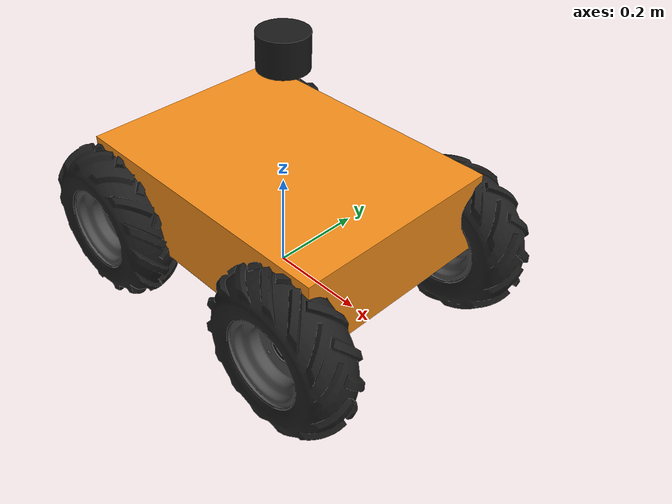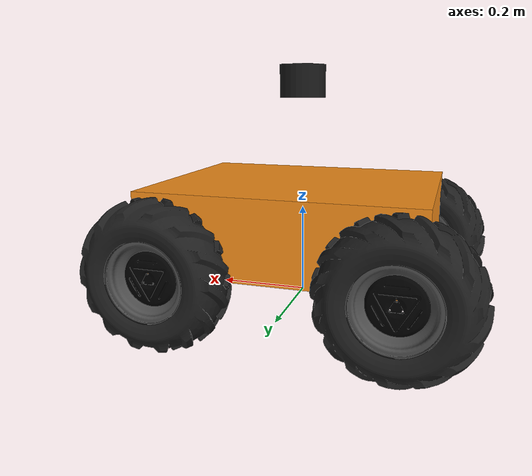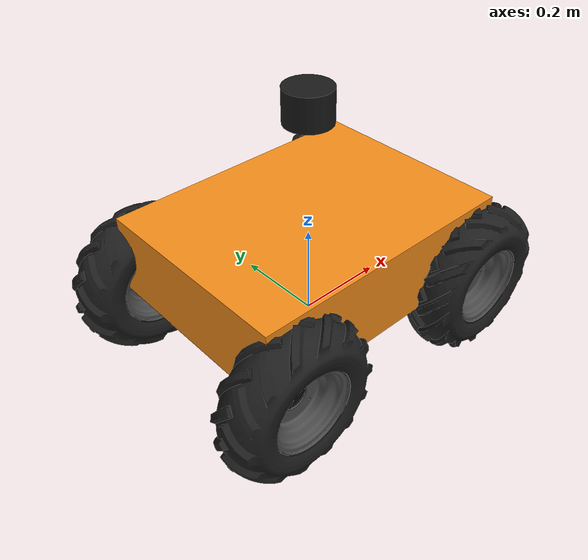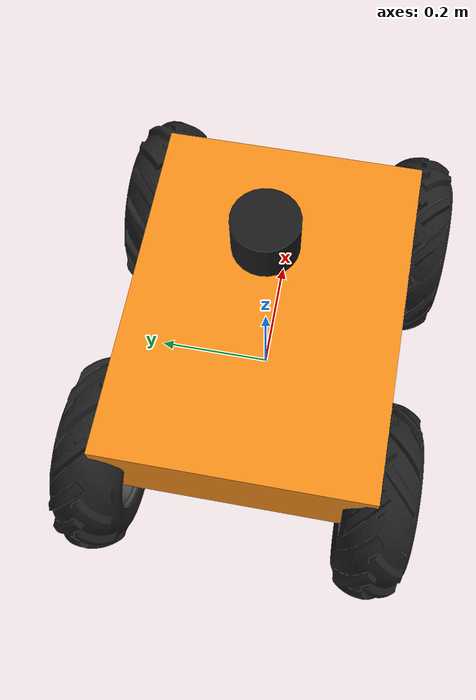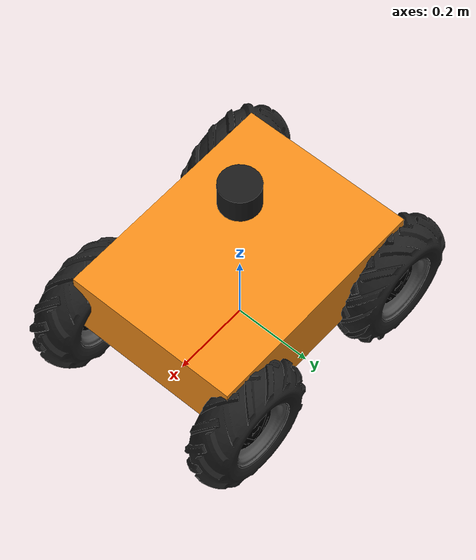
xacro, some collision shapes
<?xml version="1.0"?>
<robot name="scout_mini" xmlns:xacro="http://ros.org/wiki/xacro">

  <!-- ═══ PARAMETERS ════════════════════════════════════════════════════ -->
  <!-- Scout Mini hardware dimensions (from AgileX datasheet) -->
  <xacro:property name="base_length"    value="0.600"/>
  <xacro:property name="base_width"     value="0.450"/>
  <xacro:property name="base_height"    value="0.175"/>
  <xacro:property name="base_mass"      value="30.0"/>
  <xacro:property name="clearance"      value="0.085"/>

  <xacro:property name="wheel_radius"   value="0.0875"/>
  <xacro:property name="wheel_width"    value="0.055"/>
  <xacro:property name="wheel_mass"     value="1.5"/>
  <xacro:property name="track"          value="0.4671"/>   <!-- L-R wheel centre distance -->
  <xacro:property name="wheelbase"      value="0.498"/>    <!-- front-rear axle distance -->

  <xacro:property name="lidar_z"        value="0.22"/>     <!-- height above base_link origin -->
  <xacro:property name="pi"             value="3.14159265358979"/>

  <!-- ═══ INERTIA MACROS ════════════════════════════════════════════════ -->
  <xacro:macro name="box_inertia" params="m l w h">
    <inertial>
      <mass value="${m}"/>
      <inertia ixx="${m*(w*w+h*h)/12}" ixy="0" ixz="0"
               iyy="${m*(l*l+h*h)/12}" iyz="0"
               izz="${m*(l*l+w*w)/12}"/>
    </inertial>
  </xacro:macro>

  <xacro:macro name="cyl_inertia" params="m r h">
    <inertial>
      <mass value="${m}"/>
      <inertia ixx="${m*(3*r*r+h*h)/12}" ixy="0" ixz="0"
               iyy="${m*(3*r*r+h*h)/12}" iyz="0"
               izz="${m*r*r/2}"/>
    </inertial>
  </xacro:macro>

  <xacro:macro name="wheel" params="prefix x_pos y_pos mesh_type">
    <link name="wheel_${prefix}_link">
      <visual>
        <origin xyz="0 0 0" rpy="0 0 0"/>
        <geometry>
          <mesh filename="package://scout_description/meshes/${mesh_type}.dae"/>
        </geometry>
      </visual>
      <collision>
        <origin xyz="0 0 0" rpy="${pi/2} 0 0"/>
        <geometry>
          <cylinder radius="${wheel_radius}" length="${wheel_width}"/>
        </geometry>
      </collision>
      <xacro:cyl_inertia m="${wheel_mass}" r="${wheel_radius}" h="${wheel_width}"/>
    </link>

    <joint name="wheel_${prefix}_joint" type="continuous">
      <parent link="base_link"/>
      <child  link="wheel_${prefix}_link"/>
      <origin xyz="${x_pos} ${y_pos} ${-clearance}" rpy="0 0 0"/>
      <axis xyz="0 1 0"/>
      <dynamics damping="0.1" friction="0.2"/>
    </joint>

    <!-- Gazebo wheel friction properties -->
    <gazebo reference="wheel_${prefix}_link">
      <mu1>1.0</mu1>
      <mu2>0.5</mu2>
      <kp>500000.0</kp>
      <kd>10.0</kd>
      <minDepth>0.001</minDepth>
      <maxVel>0.1</maxVel>
    </gazebo>
  </xacro:macro>

  <!-- ═══ BASE LINKS ════════════════════════════════════════════════════ -->
  <link name="base_footprint"/>

  <joint name="base_footprint_joint" type="fixed">
    <parent link="base_footprint"/>
    <child  link="base_link"/>
    <origin xyz="0 0 ${clearance + wheel_radius}" rpy="0 0 0"/>
  </joint>

  <link name="base_link">
    <visual>
      <origin xyz="0 0 0" rpy="0 0 0"/>
      <geometry>
        <!-- Real Scout Mini body mesh from scout_description package -->
        <mesh filename="package://scout_description/meshes/base_link.dae"/>
      </geometry>
    </visual>
    <collision>
      <origin xyz="0 0 0" rpy="0 0 0"/>
      <geometry>
        <!-- Box collision is simpler and faster than mesh collision -->
        <box size="${base_length} ${base_width} ${base_height}"/>
      </geometry>
    </collision>
    <xacro:box_inertia m="${base_mass}"
                       l="${base_length}" w="${base_width}" h="${base_height}"/>
  </link>

  <gazebo reference="base_link">
    <material>Gazebo/Orange</material>
  </gazebo>

  <xacro:wheel prefix="front_left"  x_pos="${wheelbase/2}"  y_pos="${track/2}"  mesh_type="wheel_type1"/>
  <xacro:wheel prefix="front_right" x_pos="${wheelbase/2}"  y_pos="${-track/2}" mesh_type="wheel_type1"/>
  <xacro:wheel prefix="rear_left"   x_pos="${-wheelbase/2}" y_pos="${track/2}"  mesh_type="wheel_type2"/>
  <xacro:wheel prefix="rear_right"  x_pos="${-wheelbase/2}" y_pos="${-track/2}" mesh_type="wheel_type2"/>

  <!-- ═══ LIDAR LINK ════════════════════════════════════════════════════ -->
  <link name="lidar_link">
    <visual>
      <geometry>
        <cylinder radius="0.05" length="0.07"/>
      </geometry>
      <material name="black">
        <color rgba="0.1 0.1 0.1 1.0"/>
      </material>
    </visual>
    <collision>
      <geometry>
        <cylinder radius="0.05" length="0.07"/>
      </geometry>
    </collision>
    <inertial>
      <mass value="0.3"/>
      <inertia ixx="0.001" ixy="0" ixz="0"
               iyy="0.001" iyz="0" izz="0.001"/>
    </inertial>
  </link>

  <joint name="lidar_joint" type="fixed">
    <parent link="base_link"/>
    <child  link="lidar_link"/>
    <origin xyz="0.0 0.0 ${base_height/2 + lidar_z}" rpy="0 0 0"/>
  </joint>

  <!-- ═══ IMU LINK ══════════════════════════════════════════════════════ -->
  <link name="imu_link">
    <visual>
      <geometry>
        <box size="0.04 0.04 0.02"/>
      </geometry>
      <material name="blue">
        <color rgba="0.1 0.3 0.8 1.0"/>
      </material>
    </visual>
    <inertial>
      <mass value="0.05"/>
      <inertia ixx="0.0001" ixy="0" ixz="0"
               iyy="0.0001" iyz="0" izz="0.0001"/>
    </inertial>
  </link>

  <joint name="imu_joint" type="fixed">
    <parent link="base_link"/>
    <child  link="imu_link"/>
    <origin xyz="0.0 0.0 0.0" rpy="0 0 0"/>
  </joint>

  <!-- ═══════════════════════════════════════════════════════════════════
       GAZEBO CLASSIC PLUGINS
       ═══════════════════════════════════════════════════════════════════ -->

  <gazebo>
    <plugin name="skid_steer_drive" filename="libgazebo_ros_skid_steer_drive.so">
      <ros>
        <namespace>/</namespace>
      </ros>

      <!-- Wheel joints — left side -->
      <left_front_joint>wheel_front_left_joint</left_front_joint>
      <left_rear_joint>wheel_rear_left_joint</left_rear_joint>
      <!-- Wheel joints — right side -->
      <right_front_joint>wheel_front_right_joint</right_front_joint>
      <right_rear_joint>wheel_rear_right_joint</right_rear_joint>

      <!-- Kinematic parameters -->
      <wheel_separation>${track}</wheel_separation>
      <wheel_diameter>${2 * wheel_radius}</wheel_diameter>

      <!-- Robot velocity limits (Scout Mini hardware specs) -->
      <max_wheel_torque>20</max_wheel_torque>
      <max_wheel_acceleration>1.0</max_wheel_acceleration>

      <!-- Topic names -->
      <command_topic>cmd_vel</command_topic>
      <odometry_topic>odom</odometry_topic>
      <odometry_frame>odom</odometry_frame>
      <robot_base_frame>base_footprint</robot_base_frame>

      <!-- Publish odometry TF -->
      <publish_odom>true</publish_odom>
      <publish_odom_tf>true</publish_odom_tf>
      <publish_wheel_tf>false</publish_wheel_tf>

      <update_rate>50</update_rate>
    </plugin>
  </gazebo>

  <!--
    2D LiDAR Sensor (GPU Ray)
    =========================
    Simulates a 360° scanning LiDAR at 10 Hz.
    Publishes: /scan (sensor_msgs/LaserScan)
  -->
  <gazebo reference="lidar_link">
    <sensor type="gpu_ray" name="lidar_sensor">
      <pose>0 0 0 0 0 0</pose>
      <visualize>false</visualize>
      <update_rate>10</update_rate>
      <ray>
        <scan>
          <horizontal>
            <samples>360</samples>
            <resolution>1</resolution>
            <min_angle>${-pi}</min_angle>
            <max_angle>${pi}</max_angle>
          </horizontal>
        </scan>
        <range>
          <min>0.10</min>
          <max>12.0</max>
          <resolution>0.01</resolution>
        </range>
        <noise>
          <type>gaussian</type>
          <mean>0.0</mean>
          <stddev>0.01</stddev>
        </noise>
      </ray>
      <plugin name="gazebo_ros_lidar" filename="libgazebo_ros_ray_sensor.so">
        <ros>
          <remapping>~/out:=scan</remapping>
        </ros>
        <output_type>sensor_msgs/LaserScan</output_type>
        <frame_name>lidar_link</frame_name>
      </plugin>
    </sensor>
  </gazebo>

  <!--
    IMU Sensor
    ==========
    6-DOF inertial measurement unit at 100 Hz.
    Publishes: /imu/data (sensor_msgs/Imu)
  -->
  <gazebo reference="imu_link">
    <sensor name="imu_sensor" type="imu">
      <always_on>true</always_on>
      <update_rate>100</update_rate>
      <visualize>false</visualize>
      <plugin name="gazebo_ros_imu" filename="libgazebo_ros_imu_sensor.so">
        <ros>
          <remapping>~/out:=imu/data</remapping>
        </ros>
        <initial_orientation_as_reference>false</initial_orientation_as_reference>
      </plugin>
      <imu>
        <angular_velocity>
          <x><noise type="gaussian"><mean>0.0</mean><stddev>0.009</stddev></noise></x>
          <y><noise type="gaussian"><mean>0.0</mean><stddev>0.009</stddev></noise></y>
          <z><noise type="gaussian"><mean>0.0</mean><stddev>0.009</stddev></noise></z>
        </angular_velocity>
        <linear_acceleration>
          <x><noise type="gaussian"><mean>0.0</mean><stddev>0.021</stddev></noise></x>
          <y><noise type="gaussian"><mean>0.0</mean><stddev>0.021</stddev></noise></y>
          <z><noise type="gaussian"><mean>0.0</mean><stddev>0.021</stddev></noise></z>
        </linear_acceleration>
      </imu>
    </sensor>
  </gazebo>

</robot>
